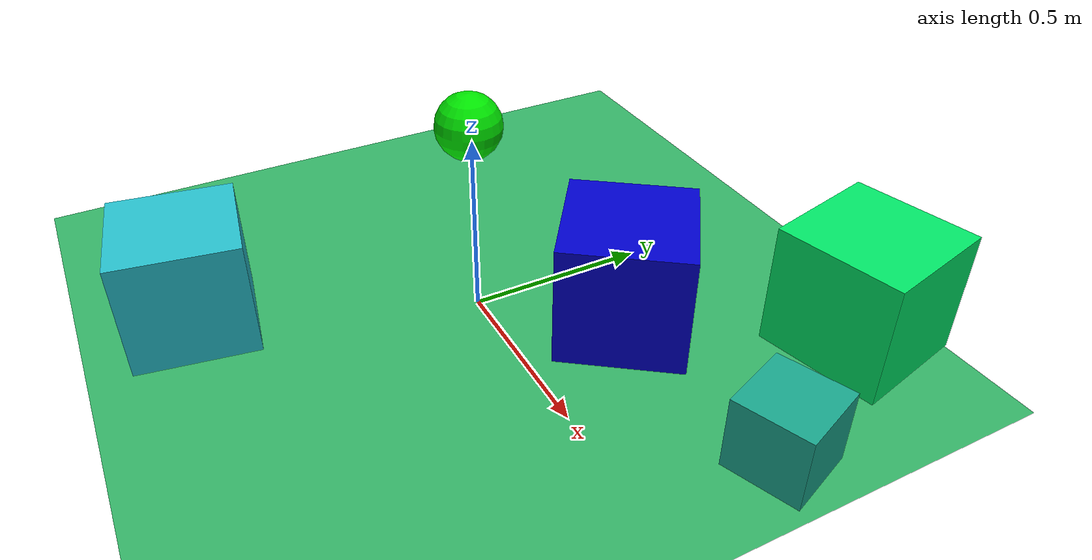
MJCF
<mujoco>
   <asset>
<texture type="skybox" builtin="gradient" rgb1="0.5 0.6 0.3" rgb2="0.5 0.6 0.1" width="256" height="256"/>
<texture name="flat_0" builtin="flat" rgb1="0.0 0.9 0.4" rgb2="0.0 0.9 0.4"  width="200" height="200"/>
<texture name="gradient_1" builtin="gradient" rgb1="0.0 0.7 0.7" rgb2="0.2 0.6 0.4" width="200" height="200"/>
<texture name="flat_2" builtin="flat" rgb1="0.0 0.0 0.8" rgb2="0.0 0.0 0.8"  width="200" height="200"/>
<texture name="checker_3" builtin="checker" rgb1="0.1 0.9 0.8" rgb2="0.2 0.6 0.8" width="200" height="200"/>
<texture name="flat_4" builtin="flat" rgb1="0.0 0.9 0.0" rgb2="0.0 0.9 0.0"  width="200" height="200"/><material name="flat_0_mat" reflectance="0" texture="flat_0" texuniform="true"/>
<material name="gradient_1_mat" reflectance="0" texture="gradient_1" texuniform="true"/>
<material name="flat_2_mat" reflectance="0" texture="flat_2" texuniform="true"/>
<material name="checker_3_mat" reflectance="0" texrepeat="2 2" texture="checker_3" texuniform="false" />
<material name="flat_4_mat" reflectance="0" texture="flat_4" texuniform="true"/>
   </asset>

   <worldbody>
      <light diffuse=".9 .9 .9" pos="0 0 3" dir="0 0 -1"/>
     <geom type="plane" size="1 1 0.1" rgba="0.2 0.7 0.4 1"/>
<geom type="box" pos="0.6 0.8 0.17" size="0.17 0.17 0.17" material="flat_0_mat" euler="0 0 13" />
<geom type="box" pos="0.84 0.36 0.1" size="0.1 0.1 0.1" material="gradient_1_mat" euler="0 0 21" />
<geom type="box" pos="0.27 0.3 0.17" size="0.17 0.17 0.17" material="flat_2_mat" euler="0 0 54" />
<geom type="box" pos="-0.26 -0.71 0.16" size="0.16 0.16 0.16" material="checker_3_mat" euler="0 0 81" />
<geom type="sphere" pos="-0.75 0.32 0.12" size="0.12 0.12 0.12" material="flat_4_mat" euler="0 0 20" /><camera euler="60 0 180" fovy="60" name="camera1" pos="-0.2 -1.5 1"></camera>   </worldbody>
</mujoco>
